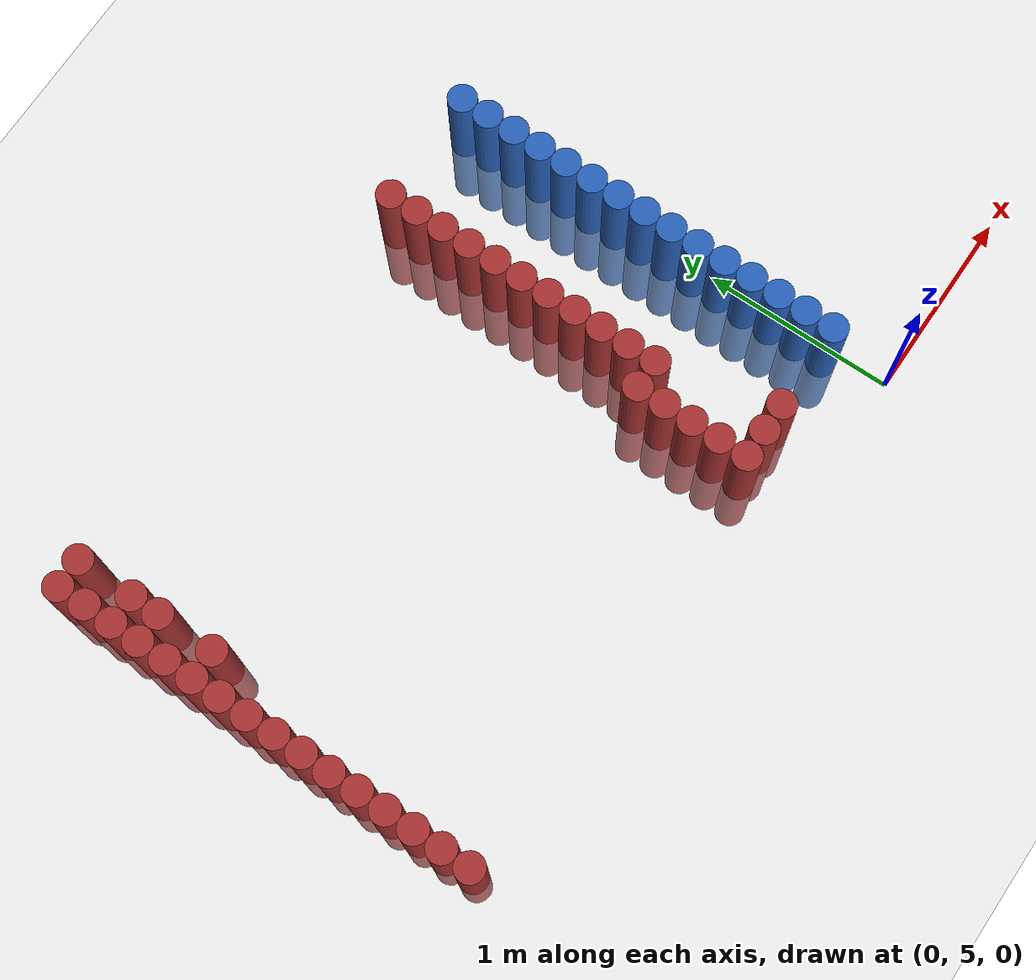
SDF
<sdf version="1.6">
 <world name="default">
  <model name="ground_plane">
   <static>1</static>
   <link name="link">
    <collision name="collision">
     <geometry><plane><normal>0 0 1</normal><size>100 100</size></plane></geometry>
     <surface><friction><ode><mu>100</mu><mu2>50</mu2></ode></friction></surface>
    </collision>
    <visual name="visual">
     <cast_shadows>0</cast_shadows>
     <geometry><plane><normal>0 0 1</normal><size>100 100</size></plane></geometry>
     <material>
      <script><uri>file://media/materials/scripts/gazebo.material</uri><name>Gazebo/Grey</name></script>
     </material>
    </visual>
   </link>
  </model>
  <model name="unit_cylinder_163">
   <static>1</static>
   <pose>-3.075000 5.325000 0.000000 0.000000 0.000000 0.000000</pose>
   <link name="link">
    <inertial>
     <mass>1</mass>
     <inertia><ixx>0.145833</ixx><ixy>0</ixy><ixz>0</ixz><iyy>0.145833</iyy><iyz>0</iyz><izz>0.125</izz></inertia>
    </inertial>
    <collision name="collision">
     <geometry><cylinder><radius>0.075000</radius><length>1</length></cylinder></geometry>
    </collision>
    <visual name="visual">
     <geometry><cylinder><radius>0.075000</radius><length>1</length></cylinder></geometry>
     <material>
      <ambient>0.648000 0.192000 0.192000 1</ambient>
      <diffuse>0.648000 0.192000 0.192000 1</diffuse>
     </material>
     <material>
      <script><name>Gazebo/Grey</name><uri>file://media/materials/scripts/gazebo.material</uri></script>
     </material>
    </visual>
   </link>
  </model>
  <model name="unit_cylinder_164">
   <static>1</static>
   <pose>-3.075000 5.475000 0.000000 0.000000 0.000000 0.000000</pose>
   <link name="link">
    <inertial>
     <mass>1</mass>
     <inertia><ixx>0.145833</ixx><ixy>0</ixy><ixz>0</ixz><iyy>0.145833</iyy><iyz>0</iyz><izz>0.125</izz></inertia>
    </inertial>
    <collision name="collision">
     <geometry><cylinder><radius>0.075000</radius><length>1</length></cylinder></geometry>
    </collision>
    <visual name="visual">
     <geometry><cylinder><radius>0.075000</radius><length>1</length></cylinder></geometry>
     <material>
      <ambient>0.648000 0.192000 0.192000 1</ambient>
      <diffuse>0.648000 0.192000 0.192000 1</diffuse>
     </material>
     <material>
      <script><name>Gazebo/Grey</name><uri>file://media/materials/scripts/gazebo.material</uri></script>
     </material>
    </visual>
   </link>
  </model>
  <model name="unit_cylinder_165">
   <static>1</static>
   <pose>-3.075000 5.625000 0.000000 0.000000 0.000000 0.000000</pose>
   <link name="link">
    <inertial>
     <mass>1</mass>
     <inertia><ixx>0.145833</ixx><ixy>0</ixy><ixz>0</ixz><iyy>0.145833</iyy><iyz>0</iyz><izz>0.125</izz></inertia>
    </inertial>
    <collision name="collision">
     <geometry><cylinder><radius>0.075000</radius><length>1</length></cylinder></geometry>
    </collision>
    <visual name="visual">
     <geometry><cylinder><radius>0.075000</radius><length>1</length></cylinder></geometry>
     <material>
      <ambient>0.648000 0.192000 0.192000 1</ambient>
      <diffuse>0.648000 0.192000 0.192000 1</diffuse>
     </material>
     <material>
      <script><name>Gazebo/Grey</name><uri>file://media/materials/scripts/gazebo.material</uri></script>
     </material>
    </visual>
   </link>
  </model>
  <model name="unit_cylinder_166">
   <static>1</static>
   <pose>-3.075000 5.775000 0.000000 0.000000 0.000000 0.000000</pose>
   <link name="link">
    <inertial>
     <mass>1</mass>
     <inertia><ixx>0.145833</ixx><ixy>0</ixy><ixz>0</ixz><iyy>0.145833</iyy><iyz>0</iyz><izz>0.125</izz></inertia>
    </inertial>
    <collision name="collision">
     <geometry><cylinder><radius>0.075000</radius><length>1</length></cylinder></geometry>
    </collision>
    <visual name="visual">
     <geometry><cylinder><radius>0.075000</radius><length>1</length></cylinder></geometry>
     <material>
      <ambient>0.648000 0.192000 0.192000 1</ambient>
      <diffuse>0.648000 0.192000 0.192000 1</diffuse>
     </material>
     <material>
      <script><name>Gazebo/Grey</name><uri>file://media/materials/scripts/gazebo.material</uri></script>
     </material>
    </visual>
   </link>
  </model>
  <model name="unit_cylinder_167">
   <static>1</static>
   <pose>-3.075000 5.925000 0.000000 0.000000 0.000000 0.000000</pose>
   <link name="link">
    <inertial>
     <mass>1</mass>
     <inertia><ixx>0.145833</ixx><ixy>0</ixy><ixz>0</ixz><iyy>0.145833</iyy><iyz>0</iyz><izz>0.125</izz></inertia>
    </inertial>
    <collision name="collision">
     <geometry><cylinder><radius>0.075000</radius><length>1</length></cylinder></geometry>
    </collision>
    <visual name="visual">
     <geometry><cylinder><radius>0.075000</radius><length>1</length></cylinder></geometry>
     <material>
      <ambient>0.648000 0.192000 0.192000 1</ambient>
      <diffuse>0.648000 0.192000 0.192000 1</diffuse>
     </material>
     <material>
      <script><name>Gazebo/Grey</name><uri>file://media/materials/scripts/gazebo.material</uri></script>
     </material>
    </visual>
   </link>
  </model>
  <model name="unit_cylinder_168">
   <static>1</static>
   <pose>-3.075000 6.075000 0.000000 0.000000 0.000000 0.000000</pose>
   <link name="link">
    <inertial>
     <mass>1</mass>
     <inertia><ixx>0.145833</ixx><ixy>0</ixy><ixz>0</ixz><iyy>0.145833</iyy><iyz>0</iyz><izz>0.125</izz></inertia>
    </inertial>
    <collision name="collision">
     <geometry><cylinder><radius>0.075000</radius><length>1</length></cylinder></geometry>
    </collision>
    <visual name="visual">
     <geometry><cylinder><radius>0.075000</radius><length>1</length></cylinder></geometry>
     <material>
      <ambient>0.648000 0.192000 0.192000 1</ambient>
      <diffuse>0.648000 0.192000 0.192000 1</diffuse>
     </material>
     <material>
      <script><name>Gazebo/Grey</name><uri>file://media/materials/scripts/gazebo.material</uri></script>
     </material>
    </visual>
   </link>
  </model>
  <model name="unit_cylinder_169">
   <static>1</static>
   <pose>-3.075000 6.225000 0.000000 0.000000 0.000000 0.000000</pose>
   <link name="link">
    <inertial>
     <mass>1</mass>
     <inertia><ixx>0.145833</ixx><ixy>0</ixy><ixz>0</ixz><iyy>0.145833</iyy><iyz>0</iyz><izz>0.125</izz></inertia>
    </inertial>
    <collision name="collision">
     <geometry><cylinder><radius>0.075000</radius><length>1</length></cylinder></geometry>
    </collision>
    <visual name="visual">
     <geometry><cylinder><radius>0.075000</radius><length>1</length></cylinder></geometry>
     <material>
      <ambient>0.648000 0.192000 0.192000 1</ambient>
      <diffuse>0.648000 0.192000 0.192000 1</diffuse>
     </material>
     <material>
      <script><name>Gazebo/Grey</name><uri>file://media/materials/scripts/gazebo.material</uri></script>
     </material>
    </visual>
   </link>
  </model>
  <model name="unit_cylinder_170">
   <static>1</static>
   <pose>-3.075000 6.375000 0.000000 0.000000 0.000000 0.000000</pose>
   <link name="link">
    <inertial>
     <mass>1</mass>
     <inertia><ixx>0.145833</ixx><ixy>0</ixy><ixz>0</ixz><iyy>0.145833</iyy><iyz>0</iyz><izz>0.125</izz></inertia>
    </inertial>
    <collision name="collision">
     <geometry><cylinder><radius>0.075000</radius><length>1</length></cylinder></geometry>
    </collision>
    <visual name="visual">
     <geometry><cylinder><radius>0.075000</radius><length>1</length></cylinder></geometry>
     <material>
      <ambient>0.648000 0.192000 0.192000 1</ambient>
      <diffuse>0.648000 0.192000 0.192000 1</diffuse>
     </material>
     <material>
      <script><name>Gazebo/Grey</name><uri>file://media/materials/scripts/gazebo.material</uri></script>
     </material>
    </visual>
   </link>
  </model>
  <model name="unit_cylinder_171">
   <static>1</static>
   <pose>-3.075000 6.525000 0.000000 0.000000 0.000000 0.000000</pose>
   <link name="link">
    <inertial>
     <mass>1</mass>
     <inertia><ixx>0.145833</ixx><ixy>0</ixy><ixz>0</ixz><iyy>0.145833</iyy><iyz>0</iyz><izz>0.125</izz></inertia>
    </inertial>
    <collision name="collision">
     <geometry><cylinder><radius>0.075000</radius><length>1</length></cylinder></geometry>
    </collision>
    <visual name="visual">
     <geometry><cylinder><radius>0.075000</radius><length>1</length></cylinder></geometry>
     <material>
      <ambient>0.648000 0.192000 0.192000 1</ambient>
      <diffuse>0.648000 0.192000 0.192000 1</diffuse>
     </material>
     <material>
      <script><name>Gazebo/Grey</name><uri>file://media/materials/scripts/gazebo.material</uri></script>
     </material>
    </visual>
   </link>
  </model>
  <model name="unit_cylinder_172">
   <static>1</static>
   <pose>-3.075000 6.675000 0.000000 0.000000 0.000000 0.000000</pose>
   <link name="link">
    <inertial>
     <mass>1</mass>
     <inertia><ixx>0.145833</ixx><ixy>0</ixy><ixz>0</ixz><iyy>0.145833</iyy><iyz>0</iyz><izz>0.125</izz></inertia>
    </inertial>
    <collision name="collision">
     <geometry><cylinder><radius>0.075000</radius><length>1</length></cylinder></geometry>
    </collision>
    <visual name="visual">
     <geometry><cylinder><radius>0.075000</radius><length>1</length></cylinder></geometry>
     <material>
      <ambient>0.648000 0.192000 0.192000 1</ambient>
      <diffuse>0.648000 0.192000 0.192000 1</diffuse>
     </material>
     <material>
      <script><name>Gazebo/Grey</name><uri>file://media/materials/scripts/gazebo.material</uri></script>
     </material>
    </visual>
   </link>
  </model>
  <model name="unit_cylinder_173">
   <static>1</static>
   <pose>-3.075000 6.825000 0.000000 0.000000 0.000000 0.000000</pose>
   <link name="link">
    <inertial>
     <mass>1</mass>
     <inertia><ixx>0.145833</ixx><ixy>0</ixy><ixz>0</ixz><iyy>0.145833</iyy><iyz>0</iyz><izz>0.125</izz></inertia>
    </inertial>
    <collision name="collision">
     <geometry><cylinder><radius>0.075000</radius><length>1</length></cylinder></geometry>
    </collision>
    <visual name="visual">
     <geometry><cylinder><radius>0.075000</radius><length>1</length></cylinder></geometry>
     <material>
      <ambient>0.648000 0.192000 0.192000 1</ambient>
      <diffuse>0.648000 0.192000 0.192000 1</diffuse>
     </material>
     <material>
      <script><name>Gazebo/Grey</name><uri>file://media/materials/scripts/gazebo.material</uri></script>
     </material>
    </visual>
   </link>
  </model>
  <model name="unit_cylinder_174">
   <static>1</static>
   <pose>-3.075000 6.975000 0.000000 0.000000 0.000000 0.000000</pose>
   <link name="link">
    <inertial>
     <mass>1</mass>
     <inertia><ixx>0.145833</ixx><ixy>0</ixy><ixz>0</ixz><iyy>0.145833</iyy><iyz>0</iyz><izz>0.125</izz></inertia>
    </inertial>
    <collision name="collision">
     <geometry><cylinder><radius>0.075000</radius><length>1</length></cylinder></geometry>
    </collision>
    <visual name="visual">
     <geometry><cylinder><radius>0.075000</radius><length>1</length></cylinder></geometry>
     <material>
      <ambient>0.648000 0.192000 0.192000 1</ambient>
      <diffuse>0.648000 0.192000 0.192000 1</diffuse>
     </material>
     <material>
      <script><name>Gazebo/Grey</name><uri>file://media/materials/scripts/gazebo.material</uri></script>
     </material>
    </visual>
   </link>
  </model>
  <model name="unit_cylinder_175">
   <static>1</static>
   <pose>-3.075000 7.125000 0.000000 0.000000 0.000000 0.000000</pose>
   <link name="link">
    <inertial>
     <mass>1</mass>
     <inertia><ixx>0.145833</ixx><ixy>0</ixy><ixz>0</ixz><iyy>0.145833</iyy><iyz>0</iyz><izz>0.125</izz></inertia>
    </inertial>
    <collision name="collision">
     <geometry><cylinder><radius>0.075000</radius><length>1</length></cylinder></geometry>
    </collision>
    <visual name="visual">
     <geometry><cylinder><radius>0.075000</radius><length>1</length></cylinder></geometry>
     <material>
      <ambient>0.648000 0.192000 0.192000 1</ambient>
      <diffuse>0.648000 0.192000 0.192000 1</diffuse>
     </material>
     <material>
      <script><name>Gazebo/Grey</name><uri>file://media/materials/scripts/gazebo.material</uri></script>
     </material>
    </visual>
   </link>
  </model>
  <model name="unit_cylinder_176">
   <static>1</static>
   <pose>-3.075000 7.275000 0.000000 0.000000 0.000000 0.000000</pose>
   <link name="link">
    <inertial>
     <mass>1</mass>
     <inertia><ixx>0.145833</ixx><ixy>0</ixy><ixz>0</ixz><iyy>0.145833</iyy><iyz>0</iyz><izz>0.125</izz></inertia>
    </inertial>
    <collision name="collision">
     <geometry><cylinder><radius>0.075000</radius><length>1</length></cylinder></geometry>
    </collision>
    <visual name="visual">
     <geometry><cylinder><radius>0.075000</radius><length>1</length></cylinder></geometry>
     <material>
      <ambient>0.648000 0.192000 0.192000 1</ambient>
      <diffuse>0.648000 0.192000 0.192000 1</diffuse>
     </material>
     <material>
      <script><name>Gazebo/Grey</name><uri>file://media/materials/scripts/gazebo.material</uri></script>
     </material>
    </visual>
   </link>
  </model>
  <model name="unit_cylinder_177">
   <static>1</static>
   <pose>-3.075000 7.425000 0.000000 0.000000 0.000000 0.000000</pose>
   <link name="link">
    <inertial>
     <mass>1</mass>
     <inertia><ixx>0.145833</ixx><ixy>0</ixy><ixz>0</ixz><iyy>0.145833</iyy><iyz>0</iyz><izz>0.125</izz></inertia>
    </inertial>
    <collision name="collision">
     <geometry><cylinder><radius>0.075000</radius><length>1</length></cylinder></geometry>
    </collision>
    <visual name="visual">
     <geometry><cylinder><radius>0.075000</radius><length>1</length></cylinder></geometry>
     <material>
      <ambient>0.648000 0.192000 0.192000 1</ambient>
      <diffuse>0.648000 0.192000 0.192000 1</diffuse>
     </material>
     <material>
      <script><name>Gazebo/Grey</name><uri>file://media/materials/scripts/gazebo.material</uri></script>
     </material>
    </visual>
   </link>
  </model>
  <model name="unit_cylinder_178">
   <static>1</static>
   <pose>-3.075000 7.575000 0.000000 0.000000 0.000000 0.000000</pose>
   <link name="link">
    <inertial>
     <mass>1</mass>
     <inertia><ixx>0.145833</ixx><ixy>0</ixy><ixz>0</ixz><iyy>0.145833</iyy><iyz>0</iyz><izz>0.125</izz></inertia>
    </inertial>
    <collision name="collision">
     <geometry><cylinder><radius>0.075000</radius><length>1</length></cylinder></geometry>
    </collision>
    <visual name="visual">
     <geometry><cylinder><radius>0.075000</radius><length>1</length></cylinder></geometry>
     <material>
      <ambient>0.648000 0.192000 0.192000 1</ambient>
      <diffuse>0.648000 0.192000 0.192000 1</diffuse>
     </material>
     <material>
      <script><name>Gazebo/Grey</name><uri>file://media/materials/scripts/gazebo.material</uri></script>
     </material>
    </visual>
   </link>
  </model>
  <model name="unit_cylinder_189">
   <static>1</static>
   <pose>-2.925000 6.825000 0.000000 0.000000 0.000000 0.000000</pose>
   <link name="link">
    <inertial>
     <mass>1</mass>
     <inertia><ixx>0.145833</ixx><ixy>0</ixy><ixz>0</ixz><iyy>0.145833</iyy><iyz>0</iyz><izz>0.125</izz></inertia>
    </inertial>
    <collision name="collision">
     <geometry><cylinder><radius>0.075000</radius><length>1</length></cylinder></geometry>
    </collision>
    <visual name="visual">
     <geometry><cylinder><radius>0.075000</radius><length>1</length></cylinder></geometry>
     <material>
      <ambient>0.648000 0.192000 0.192000 1</ambient>
      <diffuse>0.648000 0.192000 0.192000 1</diffuse>
     </material>
     <material>
      <script><name>Gazebo/Grey</name><uri>file://media/materials/scripts/gazebo.material</uri></script>
     </material>
    </visual>
   </link>
  </model>
  <model name="unit_cylinder_190">
   <static>1</static>
   <pose>-2.925000 7.125000 0.000000 0.000000 0.000000 0.000000</pose>
   <link name="link">
    <inertial>
     <mass>1</mass>
     <inertia><ixx>0.145833</ixx><ixy>0</ixy><ixz>0</ixz><iyy>0.145833</iyy><iyz>0</iyz><izz>0.125</izz></inertia>
    </inertial>
    <collision name="collision">
     <geometry><cylinder><radius>0.075000</radius><length>1</length></cylinder></geometry>
    </collision>
    <visual name="visual">
     <geometry><cylinder><radius>0.075000</radius><length>1</length></cylinder></geometry>
     <material>
      <ambient>0.648000 0.192000 0.192000 1</ambient>
      <diffuse>0.648000 0.192000 0.192000 1</diffuse>
     </material>
     <material>
      <script><name>Gazebo/Grey</name><uri>file://media/materials/scripts/gazebo.material</uri></script>
     </material>
    </visual>
   </link>
  </model>
  <model name="unit_cylinder_191">
   <static>1</static>
   <pose>-2.925000 7.275000 0.000000 0.000000 0.000000 0.000000</pose>
   <link name="link">
    <inertial>
     <mass>1</mass>
     <inertia><ixx>0.145833</ixx><ixy>0</ixy><ixz>0</ixz><iyy>0.145833</iyy><iyz>0</iyz><izz>0.125</izz></inertia>
    </inertial>
    <collision name="collision">
     <geometry><cylinder><radius>0.075000</radius><length>1</length></cylinder></geometry>
    </collision>
    <visual name="visual">
     <geometry><cylinder><radius>0.075000</radius><length>1</length></cylinder></geometry>
     <material>
      <ambient>0.648000 0.192000 0.192000 1</ambient>
      <diffuse>0.648000 0.192000 0.192000 1</diffuse>
     </material>
     <material>
      <script><name>Gazebo/Grey</name><uri>file://media/materials/scripts/gazebo.material</uri></script>
     </material>
    </visual>
   </link>
  </model>
  <model name="unit_cylinder_192">
   <static>1</static>
   <pose>-2.925000 7.575000 0.000000 0.000000 0.000000 0.000000</pose>
   <link name="link">
    <inertial>
     <mass>1</mass>
     <inertia><ixx>0.145833</ixx><ixy>0</ixy><ixz>0</ixz><iyy>0.145833</iyy><iyz>0</iyz><izz>0.125</izz></inertia>
    </inertial>
    <collision name="collision">
     <geometry><cylinder><radius>0.075000</radius><length>1</length></cylinder></geometry>
    </collision>
    <visual name="visual">
     <geometry><cylinder><radius>0.075000</radius><length>1</length></cylinder></geometry>
     <material>
      <ambient>0.648000 0.192000 0.192000 1</ambient>
      <diffuse>0.648000 0.192000 0.192000 1</diffuse>
     </material>
     <material>
      <script><name>Gazebo/Grey</name><uri>file://media/materials/scripts/gazebo.material</uri></script>
     </material>
    </visual>
   </link>
  </model>
  <model name="unit_cylinder_201">
   <static>1</static>
   <pose>-0.825000 5.325000 0.000000 0.000000 0.000000 0.000000</pose>
   <link name="link">
    <inertial>
     <mass>1</mass>
     <inertia><ixx>0.145833</ixx><ixy>0</ixy><ixz>0</ixz><iyy>0.145833</iyy><iyz>0</iyz><izz>0.125</izz></inertia>
    </inertial>
    <collision name="collision">
     <geometry><cylinder><radius>0.075000</radius><length>1</length></cylinder></geometry>
    </collision>
    <visual name="visual">
     <geometry><cylinder><radius>0.075000</radius><length>1</length></cylinder></geometry>
     <material>
      <ambient>0.648000 0.192000 0.192000 1</ambient>
      <diffuse>0.648000 0.192000 0.192000 1</diffuse>
     </material>
     <material>
      <script><name>Gazebo/Grey</name><uri>file://media/materials/scripts/gazebo.material</uri></script>
     </material>
    </visual>
   </link>
  </model>
  <model name="unit_cylinder_202">
   <static>1</static>
   <pose>-0.825000 5.475000 0.000000 0.000000 0.000000 0.000000</pose>
   <link name="link">
    <inertial>
     <mass>1</mass>
     <inertia><ixx>0.145833</ixx><ixy>0</ixy><ixz>0</ixz><iyy>0.145833</iyy><iyz>0</iyz><izz>0.125</izz></inertia>
    </inertial>
    <collision name="collision">
     <geometry><cylinder><radius>0.075000</radius><length>1</length></cylinder></geometry>
    </collision>
    <visual name="visual">
     <geometry><cylinder><radius>0.075000</radius><length>1</length></cylinder></geometry>
     <material>
      <ambient>0.648000 0.192000 0.192000 1</ambient>
      <diffuse>0.648000 0.192000 0.192000 1</diffuse>
     </material>
     <material>
      <script><name>Gazebo/Grey</name><uri>file://media/materials/scripts/gazebo.material</uri></script>
     </material>
    </visual>
   </link>
  </model>
  <model name="unit_cylinder_203">
   <static>1</static>
   <pose>-0.825000 5.625000 0.000000 0.000000 0.000000 0.000000</pose>
   <link name="link">
    <inertial>
     <mass>1</mass>
     <inertia><ixx>0.145833</ixx><ixy>0</ixy><ixz>0</ixz><iyy>0.145833</iyy><iyz>0</iyz><izz>0.125</izz></inertia>
    </inertial>
    <collision name="collision">
     <geometry><cylinder><radius>0.075000</radius><length>1</length></cylinder></geometry>
    </collision>
    <visual name="visual">
     <geometry><cylinder><radius>0.075000</radius><length>1</length></cylinder></geometry>
     <material>
      <ambient>0.648000 0.192000 0.192000 1</ambient>
      <diffuse>0.648000 0.192000 0.192000 1</diffuse>
     </material>
     <material>
      <script><name>Gazebo/Grey</name><uri>file://media/materials/scripts/gazebo.material</uri></script>
     </material>
    </visual>
   </link>
  </model>
  <model name="unit_cylinder_204">
   <static>1</static>
   <pose>-0.825000 5.775000 0.000000 0.000000 0.000000 0.000000</pose>
   <link name="link">
    <inertial>
     <mass>1</mass>
     <inertia><ixx>0.145833</ixx><ixy>0</ixy><ixz>0</ixz><iyy>0.145833</iyy><iyz>0</iyz><izz>0.125</izz></inertia>
    </inertial>
    <collision name="collision">
     <geometry><cylinder><radius>0.075000</radius><length>1</length></cylinder></geometry>
    </collision>
    <visual name="visual">
     <geometry><cylinder><radius>0.075000</radius><length>1</length></cylinder></geometry>
     <material>
      <ambient>0.648000 0.192000 0.192000 1</ambient>
      <diffuse>0.648000 0.192000 0.192000 1</diffuse>
     </material>
     <material>
      <script><name>Gazebo/Grey</name><uri>file://media/materials/scripts/gazebo.material</uri></script>
     </material>
    </visual>
   </link>
  </model>
  <model name="unit_cylinder_205">
   <static>1</static>
   <pose>-0.825000 5.925000 0.000000 0.000000 0.000000 0.000000</pose>
   <link name="link">
    <inertial>
     <mass>1</mass>
     <inertia><ixx>0.145833</ixx><ixy>0</ixy><ixz>0</ixz><iyy>0.145833</iyy><iyz>0</iyz><izz>0.125</izz></inertia>
    </inertial>
    <collision name="collision">
     <geometry><cylinder><radius>0.075000</radius><length>1</length></cylinder></geometry>
    </collision>
    <visual name="visual">
     <geometry><cylinder><radius>0.075000</radius><length>1</length></cylinder></geometry>
     <material>
      <ambient>0.648000 0.192000 0.192000 1</ambient>
      <diffuse>0.648000 0.192000 0.192000 1</diffuse>
     </material>
     <material>
      <script><name>Gazebo/Grey</name><uri>file://media/materials/scripts/gazebo.material</uri></script>
     </material>
    </visual>
   </link>
  </model>
  <model name="unit_cylinder_206">
   <static>1</static>
   <pose>-0.675000 5.325000 0.000000 0.000000 0.000000 0.000000</pose>
   <link name="link">
    <inertial>
     <mass>1</mass>
     <inertia><ixx>0.145833</ixx><ixy>0</ixy><ixz>0</ixz><iyy>0.145833</iyy><iyz>0</iyz><izz>0.125</izz></inertia>
    </inertial>
    <collision name="collision">
     <geometry><cylinder><radius>0.075000</radius><length>1</length></cylinder></geometry>
    </collision>
    <visual name="visual">
     <geometry><cylinder><radius>0.075000</radius><length>1</length></cylinder></geometry>
     <material>
      <ambient>0.648000 0.192000 0.192000 1</ambient>
      <diffuse>0.648000 0.192000 0.192000 1</diffuse>
     </material>
     <material>
      <script><name>Gazebo/Grey</name><uri>file://media/materials/scripts/gazebo.material</uri></script>
     </material>
    </visual>
   </link>
  </model>
  <model name="unit_cylinder_207">
   <static>1</static>
   <pose>-0.675000 5.925000 0.000000 0.000000 0.000000 0.000000</pose>
   <link name="link">
    <inertial>
     <mass>1</mass>
     <inertia><ixx>0.145833</ixx><ixy>0</ixy><ixz>0</ixz><iyy>0.145833</iyy><iyz>0</iyz><izz>0.125</izz></inertia>
    </inertial>
    <collision name="collision">
     <geometry><cylinder><radius>0.075000</radius><length>1</length></cylinder></geometry>
    </collision>
    <visual name="visual">
     <geometry><cylinder><radius>0.075000</radius><length>1</length></cylinder></geometry>
     <material>
      <ambient>0.648000 0.192000 0.192000 1</ambient>
      <diffuse>0.648000 0.192000 0.192000 1</diffuse>
     </material>
     <material>
      <script><name>Gazebo/Grey</name><uri>file://media/materials/scripts/gazebo.material</uri></script>
     </material>
    </visual>
   </link>
  </model>
  <model name="unit_cylinder_208">
   <static>1</static>
   <pose>-0.675000 6.075000 0.000000 0.000000 0.000000 0.000000</pose>
   <link name="link">
    <inertial>
     <mass>1</mass>
     <inertia><ixx>0.145833</ixx><ixy>0</ixy><ixz>0</ixz><iyy>0.145833</iyy><iyz>0</iyz><izz>0.125</izz></inertia>
    </inertial>
    <collision name="collision">
     <geometry><cylinder><radius>0.075000</radius><length>1</length></cylinder></geometry>
    </collision>
    <visual name="visual">
     <geometry><cylinder><radius>0.075000</radius><length>1</length></cylinder></geometry>
     <material>
      <ambient>0.648000 0.192000 0.192000 1</ambient>
      <diffuse>0.648000 0.192000 0.192000 1</diffuse>
     </material>
     <material>
      <script><name>Gazebo/Grey</name><uri>file://media/materials/scripts/gazebo.material</uri></script>
     </material>
    </visual>
   </link>
  </model>
  <model name="unit_cylinder_209">
   <static>1</static>
   <pose>-0.675000 6.225000 0.000000 0.000000 0.000000 0.000000</pose>
   <link name="link">
    <inertial>
     <mass>1</mass>
     <inertia><ixx>0.145833</ixx><ixy>0</ixy><ixz>0</ixz><iyy>0.145833</iyy><iyz>0</iyz><izz>0.125</izz></inertia>
    </inertial>
    <collision name="collision">
     <geometry><cylinder><radius>0.075000</radius><length>1</length></cylinder></geometry>
    </collision>
    <visual name="visual">
     <geometry><cylinder><radius>0.075000</radius><length>1</length></cylinder></geometry>
     <material>
      <ambient>0.648000 0.192000 0.192000 1</ambient>
      <diffuse>0.648000 0.192000 0.192000 1</diffuse>
     </material>
     <material>
      <script><name>Gazebo/Grey</name><uri>file://media/materials/scripts/gazebo.material</uri></script>
     </material>
    </visual>
   </link>
  </model>
  <model name="unit_cylinder_210">
   <static>1</static>
   <pose>-0.675000 6.375000 0.000000 0.000000 0.000000 0.000000</pose>
   <link name="link">
    <inertial>
     <mass>1</mass>
     <inertia><ixx>0.145833</ixx><ixy>0</ixy><ixz>0</ixz><iyy>0.145833</iyy><iyz>0</iyz><izz>0.125</izz></inertia>
    </inertial>
    <collision name="collision">
     <geometry><cylinder><radius>0.075000</radius><length>1</length></cylinder></geometry>
    </collision>
    <visual name="visual">
     <geometry><cylinder><radius>0.075000</radius><length>1</length></cylinder></geometry>
     <material>
      <ambient>0.648000 0.192000 0.192000 1</ambient>
      <diffuse>0.648000 0.192000 0.192000 1</diffuse>
     </material>
     <material>
      <script><name>Gazebo/Grey</name><uri>file://media/materials/scripts/gazebo.material</uri></script>
     </material>
    </visual>
   </link>
  </model>
  <model name="unit_cylinder_211">
   <static>1</static>
   <pose>-0.675000 6.525000 0.000000 0.000000 0.000000 0.000000</pose>
   <link name="link">
    <inertial>
     <mass>1</mass>
     <inertia><ixx>0.145833</ixx><ixy>0</ixy><ixz>0</ixz><iyy>0.145833</iyy><iyz>0</iyz><izz>0.125</izz></inertia>
    </inertial>
    <collision name="collision">
     <geometry><cylinder><radius>0.075000</radius><length>1</length></cylinder></geometry>
    </collision>
    <visual name="visual">
     <geometry><cylinder><radius>0.075000</radius><length>1</length></cylinder></geometry>
     <material>
      <ambient>0.648000 0.192000 0.192000 1</ambient>
      <diffuse>0.648000 0.192000 0.192000 1</diffuse>
     </material>
     <material>
      <script><name>Gazebo/Grey</name><uri>file://media/materials/scripts/gazebo.material</uri></script>
     </material>
    </visual>
   </link>
  </model>
  <model name="unit_cylinder_212">
   <static>1</static>
   <pose>-0.675000 6.675000 0.000000 0.000000 0.000000 0.000000</pose>
   <link name="link">
    <inertial>
     <mass>1</mass>
     <inertia><ixx>0.145833</ixx><ixy>0</ixy><ixz>0</ixz><iyy>0.145833</iyy><iyz>0</iyz><izz>0.125</izz></inertia>
    </inertial>
    <collision name="collision">
     <geometry><cylinder><radius>0.075000</radius><length>1</length></cylinder></geometry>
    </collision>
    <visual name="visual">
     <geometry><cylinder><radius>0.075000</radius><length>1</length></cylinder></geometry>
     <material>
      <ambient>0.648000 0.192000 0.192000 1</ambient>
      <diffuse>0.648000 0.192000 0.192000 1</diffuse>
     </material>
     <material>
      <script><name>Gazebo/Grey</name><uri>file://media/materials/scripts/gazebo.material</uri></script>
     </material>
    </visual>
   </link>
  </model>
  <model name="unit_cylinder_213">
   <static>1</static>
   <pose>-0.675000 6.825000 0.000000 0.000000 0.000000 0.000000</pose>
   <link name="link">
    <inertial>
     <mass>1</mass>
     <inertia><ixx>0.145833</ixx><ixy>0</ixy><ixz>0</ixz><iyy>0.145833</iyy><iyz>0</iyz><izz>0.125</izz></inertia>
    </inertial>
    <collision name="collision">
     <geometry><cylinder><radius>0.075000</radius><length>1</length></cylinder></geometry>
    </collision>
    <visual name="visual">
     <geometry><cylinder><radius>0.075000</radius><length>1</length></cylinder></geometry>
     <material>
      <ambient>0.648000 0.192000 0.192000 1</ambient>
      <diffuse>0.648000 0.192000 0.192000 1</diffuse>
     </material>
     <material>
      <script><name>Gazebo/Grey</name><uri>file://media/materials/scripts/gazebo.material</uri></script>
     </material>
    </visual>
   </link>
  </model>
  <model name="unit_cylinder_214">
   <static>1</static>
   <pose>-0.675000 6.975000 0.000000 0.000000 0.000000 0.000000</pose>
   <link name="link">
    <inertial>
     <mass>1</mass>
     <inertia><ixx>0.145833</ixx><ixy>0</ixy><ixz>0</ixz><iyy>0.145833</iyy><iyz>0</iyz><izz>0.125</izz></inertia>
    </inertial>
    <collision name="collision">
     <geometry><cylinder><radius>0.075000</radius><length>1</length></cylinder></geometry>
    </collision>
    <visual name="visual">
     <geometry><cylinder><radius>0.075000</radius><length>1</length></cylinder></geometry>
     <material>
      <ambient>0.648000 0.192000 0.192000 1</ambient>
      <diffuse>0.648000 0.192000 0.192000 1</diffuse>
     </material>
     <material>
      <script><name>Gazebo/Grey</name><uri>file://media/materials/scripts/gazebo.material</uri></script>
     </material>
    </visual>
   </link>
  </model>
  <model name="unit_cylinder_215">
   <static>1</static>
   <pose>-0.675000 7.125000 0.000000 0.000000 0.000000 0.000000</pose>
   <link name="link">
    <inertial>
     <mass>1</mass>
     <inertia><ixx>0.145833</ixx><ixy>0</ixy><ixz>0</ixz><iyy>0.145833</iyy><iyz>0</iyz><izz>0.125</izz></inertia>
    </inertial>
    <collision name="collision">
     <geometry><cylinder><radius>0.075000</radius><length>1</length></cylinder></geometry>
    </collision>
    <visual name="visual">
     <geometry><cylinder><radius>0.075000</radius><length>1</length></cylinder></geometry>
     <material>
      <ambient>0.648000 0.192000 0.192000 1</ambient>
      <diffuse>0.648000 0.192000 0.192000 1</diffuse>
     </material>
     <material>
      <script><name>Gazebo/Grey</name><uri>file://media/materials/scripts/gazebo.material</uri></script>
     </material>
    </visual>
   </link>
  </model>
  <model name="unit_cylinder_216">
   <static>1</static>
   <pose>-0.675000 7.275000 0.000000 0.000000 0.000000 0.000000</pose>
   <link name="link">
    <inertial>
     <mass>1</mass>
     <inertia><ixx>0.145833</ixx><ixy>0</ixy><ixz>0</ixz><iyy>0.145833</iyy><iyz>0</iyz><izz>0.125</izz></inertia>
    </inertial>
    <collision name="collision">
     <geometry><cylinder><radius>0.075000</radius><length>1</length></cylinder></geometry>
    </collision>
    <visual name="visual">
     <geometry><cylinder><radius>0.075000</radius><length>1</length></cylinder></geometry>
     <material>
      <ambient>0.648000 0.192000 0.192000 1</ambient>
      <diffuse>0.648000 0.192000 0.192000 1</diffuse>
     </material>
     <material>
      <script><name>Gazebo/Grey</name><uri>file://media/materials/scripts/gazebo.material</uri></script>
     </material>
    </visual>
   </link>
  </model>
  <model name="unit_cylinder_217">
   <static>1</static>
   <pose>-0.675000 7.425000 0.000000 0.000000 0.000000 0.000000</pose>
   <link name="link">
    <inertial>
     <mass>1</mass>
     <inertia><ixx>0.145833</ixx><ixy>0</ixy><ixz>0</ixz><iyy>0.145833</iyy><iyz>0</iyz><izz>0.125</izz></inertia>
    </inertial>
    <collision name="collision">
     <geometry><cylinder><radius>0.075000</radius><length>1</length></cylinder></geometry>
    </collision>
    <visual name="visual">
     <geometry><cylinder><radius>0.075000</radius><length>1</length></cylinder></geometry>
     <material>
      <ambient>0.648000 0.192000 0.192000 1</ambient>
      <diffuse>0.648000 0.192000 0.192000 1</diffuse>
     </material>
     <material>
      <script><name>Gazebo/Grey</name><uri>file://media/materials/scripts/gazebo.material</uri></script>
     </material>
    </visual>
   </link>
  </model>
  <model name="unit_cylinder_225">
   <static>1</static>
   <pose>-0.525000 5.325000 0.000000 0.000000 0.000000 0.000000</pose>
   <link name="link">
    <inertial>
     <mass>1</mass>
     <inertia><ixx>0.145833</ixx><ixy>0</ixy><ixz>0</ixz><iyy>0.145833</iyy><iyz>0</iyz><izz>0.125</izz></inertia>
    </inertial>
    <collision name="collision">
     <geometry><cylinder><radius>0.075000</radius><length>1</length></cylinder></geometry>
    </collision>
    <visual name="visual">
     <geometry><cylinder><radius>0.075000</radius><length>1</length></cylinder></geometry>
     <material>
      <ambient>0.648000 0.192000 0.192000 1</ambient>
      <diffuse>0.648000 0.192000 0.192000 1</diffuse>
     </material>
     <material>
      <script><name>Gazebo/Grey</name><uri>file://media/materials/scripts/gazebo.material</uri></script>
     </material>
    </visual>
   </link>
  </model>
  <model name="unit_cylinder_240">
   <static>1</static>
   <pose>-0.075000 5.325000 0.000000 0.000000 0.000000 0.000000</pose>
   <link name="link">
    <inertial>
     <mass>1</mass>
     <inertia><ixx>0.145833</ixx><ixy>0</ixy><ixz>0</ixz><iyy>0.145833</iyy><iyz>0</iyz><izz>0.125</izz></inertia>
    </inertial>
    <collision name="collision">
     <geometry><cylinder><radius>0.075000</radius><length>1</length></cylinder></geometry>
    </collision>
    <visual name="visual">
     <geometry><cylinder><radius>0.075000</radius><length>1</length></cylinder></geometry>
     <material>
      <ambient>0.152000 0.379000 0.720000 1</ambient>
      <diffuse>0.152000 0.379000 0.720000 1</diffuse>
     </material>
     <material>
      <script><name>Gazebo/Grey</name><uri>file://media/materials/scripts/gazebo.material</uri></script>
     </material>
    </visual>
   </link>
  </model>
  <model name="unit_cylinder_241">
   <static>1</static>
   <pose>-0.075000 5.475000 0.000000 0.000000 0.000000 0.000000</pose>
   <link name="link">
    <inertial>
     <mass>1</mass>
     <inertia><ixx>0.145833</ixx><ixy>0</ixy><ixz>0</ixz><iyy>0.145833</iyy><iyz>0</iyz><izz>0.125</izz></inertia>
    </inertial>
    <collision name="collision">
     <geometry><cylinder><radius>0.075000</radius><length>1</length></cylinder></geometry>
    </collision>
    <visual name="visual">
     <geometry><cylinder><radius>0.075000</radius><length>1</length></cylinder></geometry>
     <material>
      <ambient>0.152000 0.379000 0.720000 1</ambient>
      <diffuse>0.152000 0.379000 0.720000 1</diffuse>
     </material>
     <material>
      <script><name>Gazebo/Grey</name><uri>file://media/materials/scripts/gazebo.material</uri></script>
     </material>
    </visual>
   </link>
  </model>
  <model name="unit_cylinder_242">
   <static>1</static>
   <pose>-0.075000 5.625000 0.000000 0.000000 0.000000 0.000000</pose>
   <link name="link">
    <inertial>
     <mass>1</mass>
     <inertia><ixx>0.145833</ixx><ixy>0</ixy><ixz>0</ixz><iyy>0.145833</iyy><iyz>0</iyz><izz>0.125</izz></inertia>
    </inertial>
    <collision name="collision">
     <geometry><cylinder><radius>0.075000</radius><length>1</length></cylinder></geometry>
    </collision>
    <visual name="visual">
     <geometry><cylinder><radius>0.075000</radius><length>1</length></cylinder></geometry>
     <material>
      <ambient>0.152000 0.379000 0.720000 1</ambient>
      <diffuse>0.152000 0.379000 0.720000 1</diffuse>
     </material>
     <material>
      <script><name>Gazebo/Grey</name><uri>file://media/materials/scripts/gazebo.material</uri></script>
     </material>
    </visual>
   </link>
  </model>
  <model name="unit_cylinder_243">
   <static>1</static>
   <pose>-0.075000 5.775000 0.000000 0.000000 0.000000 0.000000</pose>
   <link name="link">
    <inertial>
     <mass>1</mass>
     <inertia><ixx>0.145833</ixx><ixy>0</ixy><ixz>0</ixz><iyy>0.145833</iyy><iyz>0</iyz><izz>0.125</izz></inertia>
    </inertial>
    <collision name="collision">
     <geometry><cylinder><radius>0.075000</radius><length>1</length></cylinder></geometry>
    </collision>
    <visual name="visual">
     <geometry><cylinder><radius>0.075000</radius><length>1</length></cylinder></geometry>
     <material>
      <ambient>0.152000 0.379000 0.720000 1</ambient>
      <diffuse>0.152000 0.379000 0.720000 1</diffuse>
     </material>
     <material>
      <script><name>Gazebo/Grey</name><uri>file://media/materials/scripts/gazebo.material</uri></script>
     </material>
    </visual>
   </link>
  </model>
  <model name="unit_cylinder_244">
   <static>1</static>
   <pose>-0.075000 5.925000 0.000000 0.000000 0.000000 0.000000</pose>
   <link name="link">
    <inertial>
     <mass>1</mass>
     <inertia><ixx>0.145833</ixx><ixy>0</ixy><ixz>0</ixz><iyy>0.145833</iyy><iyz>0</iyz><izz>0.125</izz></inertia>
    </inertial>
    <collision name="collision">
     <geometry><cylinder><radius>0.075000</radius><length>1</length></cylinder></geometry>
    </collision>
    <visual name="visual">
     <geometry><cylinder><radius>0.075000</radius><length>1</length></cylinder></geometry>
     <material>
      <ambient>0.152000 0.379000 0.720000 1</ambient>
      <diffuse>0.152000 0.379000 0.720000 1</diffuse>
     </material>
     <material>
      <script><name>Gazebo/Grey</name><uri>file://media/materials/scripts/gazebo.material</uri></script>
     </material>
    </visual>
   </link>
  </model>
  <model name="unit_cylinder_245">
   <static>1</static>
   <pose>-0.075000 6.075000 0.000000 0.000000 0.000000 0.000000</pose>
   <link name="link">
    <inertial>
     <mass>1</mass>
     <inertia><ixx>0.145833</ixx><ixy>0</ixy><ixz>0</ixz><iyy>0.145833</iyy><iyz>0</iyz><izz>0.125</izz></inertia>
    </inertial>
    <collision name="collision">
     <geometry><cylinder><radius>0.075000</radius><length>1</length></cylinder></geometry>
    </collision>
    <visual name="visual">
     <geometry><cylinder><radius>0.075000</radius><length>1</length></cylinder></geometry>
     <material>
      <ambient>0.152000 0.379000 0.720000 1</ambient>
      <diffuse>0.152000 0.379000 0.720000 1</diffuse>
     </material>
     <material>
      <script><name>Gazebo/Grey</name><uri>file://media/materials/scripts/gazebo.material</uri></script>
     </material>
    </visual>
   </link>
  </model>
  <model name="unit_cylinder_246">
   <static>1</static>
   <pose>-0.075000 6.225000 0.000000 0.000000 0.000000 0.000000</pose>
   <link name="link">
    <inertial>
     <mass>1</mass>
     <inertia><ixx>0.145833</ixx><ixy>0</ixy><ixz>0</ixz><iyy>0.145833</iyy><iyz>0</iyz><izz>0.125</izz></inertia>
    </inertial>
    <collision name="collision">
     <geometry><cylinder><radius>0.075000</radius><length>1</length></cylinder></geometry>
    </collision>
    <visual name="visual">
     <geometry><cylinder><radius>0.075000</radius><length>1</length></cylinder></geometry>
     <material>
      <ambient>0.152000 0.379000 0.720000 1</ambient>
      <diffuse>0.152000 0.379000 0.720000 1</diffuse>
     </material>
     <material>
      <script><name>Gazebo/Grey</name><uri>file://media/materials/scripts/gazebo.material</uri></script>
     </material>
    </visual>
   </link>
  </model>
  <model name="unit_cylinder_247">
   <static>1</static>
   <pose>-0.075000 6.375000 0.000000 0.000000 0.000000 0.000000</pose>
   <link name="link">
    <inertial>
     <mass>1</mass>
     <inertia><ixx>0.145833</ixx><ixy>0</ixy><ixz>0</ixz><iyy>0.145833</iyy><iyz>0</iyz><izz>0.125</izz></inertia>
    </inertial>
    <collision name="collision">
     <geometry><cylinder><radius>0.075000</radius><length>1</length></cylinder></geometry>
    </collision>
    <visual name="visual">
     <geometry><cylinder><radius>0.075000</radius><length>1</length></cylinder></geometry>
     <material>
      <ambient>0.152000 0.379000 0.720000 1</ambient>
      <diffuse>0.152000 0.379000 0.720000 1</diffuse>
     </material>
     <material>
      <script><name>Gazebo/Grey</name><uri>file://media/materials/scripts/gazebo.material</uri></script>
     </material>
    </visual>
   </link>
  </model>
  <model name="unit_cylinder_248">
   <static>1</static>
   <pose>-0.075000 6.525000 0.000000 0.000000 0.000000 0.000000</pose>
   <link name="link">
    <inertial>
     <mass>1</mass>
     <inertia><ixx>0.145833</ixx><ixy>0</ixy><ixz>0</ixz><iyy>0.145833</iyy><iyz>0</iyz><izz>0.125</izz></inertia>
    </inertial>
    <collision name="collision">
     <geometry><cylinder><radius>0.075000</radius><length>1</length></cylinder></geometry>
    </collision>
    <visual name="visual">
     <geometry><cylinder><radius>0.075000</radius><length>1</length></cylinder></geometry>
     <material>
      <ambient>0.152000 0.379000 0.720000 1</ambient>
      <diffuse>0.152000 0.379000 0.720000 1</diffuse>
     </material>
     <material>
      <script><name>Gazebo/Grey</name><uri>file://media/materials/scripts/gazebo.material</uri></script>
     </material>
    </visual>
   </link>
  </model>
  <model name="unit_cylinder_249">
   <static>1</static>
   <pose>-0.075000 6.675000 0.000000 0.000000 0.000000 0.000000</pose>
   <link name="link">
    <inertial>
     <mass>1</mass>
     <inertia><ixx>0.145833</ixx><ixy>0</ixy><ixz>0</ixz><iyy>0.145833</iyy><iyz>0</iyz><izz>0.125</izz></inertia>
    </inertial>
    <collision name="collision">
     <geometry><cylinder><radius>0.075000</radius><length>1</length></cylinder></geometry>
    </collision>
    <visual name="visual">
     <geometry><cylinder><radius>0.075000</radius><length>1</length></cylinder></geometry>
     <material>
      <ambient>0.152000 0.379000 0.720000 1</ambient>
      <diffuse>0.152000 0.379000 0.720000 1</diffuse>
     </material>
     <material>
      <script><name>Gazebo/Grey</name><uri>file://media/materials/scripts/gazebo.material</uri></script>
     </material>
    </visual>
   </link>
  </model>
  <model name="unit_cylinder_250">
   <static>1</static>
   <pose>-0.075000 6.825000 0.000000 0.000000 0.000000 0.000000</pose>
   <link name="link">
    <inertial>
     <mass>1</mass>
     <inertia><ixx>0.145833</ixx><ixy>0</ixy><ixz>0</ixz><iyy>0.145833</iyy><iyz>0</iyz><izz>0.125</izz></inertia>
    </inertial>
    <collision name="collision">
     <geometry><cylinder><radius>0.075000</radius><length>1</length></cylinder></geometry>
    </collision>
    <visual name="visual">
     <geometry><cylinder><radius>0.075000</radius><length>1</length></cylinder></geometry>
     <material>
      <ambient>0.152000 0.379000 0.720000 1</ambient>
      <diffuse>0.152000 0.379000 0.720000 1</diffuse>
     </material>
     <material>
      <script><name>Gazebo/Grey</name><uri>file://media/materials/scripts/gazebo.material</uri></script>
     </material>
    </visual>
   </link>
  </model>
  <model name="unit_cylinder_251">
   <static>1</static>
   <pose>-0.075000 6.975000 0.000000 0.000000 0.000000 0.000000</pose>
   <link name="link">
    <inertial>
     <mass>1</mass>
     <inertia><ixx>0.145833</ixx><ixy>0</ixy><ixz>0</ixz><iyy>0.145833</iyy><iyz>0</iyz><izz>0.125</izz></inertia>
    </inertial>
    <collision name="collision">
     <geometry><cylinder><radius>0.075000</radius><length>1</length></cylinder></geometry>
    </collision>
    <visual name="visual">
     <geometry><cylinder><radius>0.075000</radius><length>1</length></cylinder></geometry>
     <material>
      <ambient>0.152000 0.379000 0.720000 1</ambient>
      <diffuse>0.152000 0.379000 0.720000 1</diffuse>
     </material>
     <material>
      <script><name>Gazebo/Grey</name><uri>file://media/materials/scripts/gazebo.material</uri></script>
     </material>
    </visual>
   </link>
  </model>
  <model name="unit_cylinder_252">
   <static>1</static>
   <pose>-0.075000 7.125000 0.000000 0.000000 0.000000 0.000000</pose>
   <link name="link">
    <inertial>
     <mass>1</mass>
     <inertia><ixx>0.145833</ixx><ixy>0</ixy><ixz>0</ixz><iyy>0.145833</iyy><iyz>0</iyz><izz>0.125</izz></inertia>
    </inertial>
    <collision name="collision">
     <geometry><cylinder><radius>0.075000</radius><length>1</length></cylinder></geometry>
    </collision>
    <visual name="visual">
     <geometry><cylinder><radius>0.075000</radius><length>1</length></cylinder></geometry>
     <material>
      <ambient>0.152000 0.379000 0.720000 1</ambient>
      <diffuse>0.152000 0.379000 0.720000 1</diffuse>
     </material>
     <material>
      <script><name>Gazebo/Grey</name><uri>file://media/materials/scripts/gazebo.material</uri></script>
     </material>
    </visual>
   </link>
  </model>
  <model name="unit_cylinder_253">
   <static>1</static>
   <pose>-0.075000 7.275000 0.000000 0.000000 0.000000 0.000000</pose>
   <link name="link">
    <inertial>
     <mass>1</mass>
     <inertia><ixx>0.145833</ixx><ixy>0</ixy><ixz>0</ixz><iyy>0.145833</iyy><iyz>0</iyz><izz>0.125</izz></inertia>
    </inertial>
    <collision name="collision">
     <geometry><cylinder><radius>0.075000</radius><length>1</length></cylinder></geometry>
    </collision>
    <visual name="visual">
     <geometry><cylinder><radius>0.075000</radius><length>1</length></cylinder></geometry>
     <material>
      <ambient>0.152000 0.379000 0.720000 1</ambient>
      <diffuse>0.152000 0.379000 0.720000 1</diffuse>
     </material>
     <material>
      <script><name>Gazebo/Grey</name><uri>file://media/materials/scripts/gazebo.material</uri></script>
     </material>
    </visual>
   </link>
  </model>
  <model name="unit_cylinder_254">
   <static>1</static>
   <pose>-0.075000 7.425000 0.000000 0.000000 0.000000 0.000000</pose>
   <link name="link">
    <inertial>
     <mass>1</mass>
     <inertia><ixx>0.145833</ixx><ixy>0</ixy><ixz>0</ixz><iyy>0.145833</iyy><iyz>0</iyz><izz>0.125</izz></inertia>
    </inertial>
    <collision name="collision">
     <geometry><cylinder><radius>0.075000</radius><length>1</length></cylinder></geometry>
    </collision>
    <visual name="visual">
     <geometry><cylinder><radius>0.075000</radius><length>1</length></cylinder></geometry>
     <material>
      <ambient>0.152000 0.379000 0.720000 1</ambient>
      <diffuse>0.152000 0.379000 0.720000 1</diffuse>
     </material>
     <material>
      <script><name>Gazebo/Grey</name><uri>file://media/materials/scripts/gazebo.material</uri></script>
     </material>
    </visual>
   </link>
  </model>
 </world>
</sdf>
